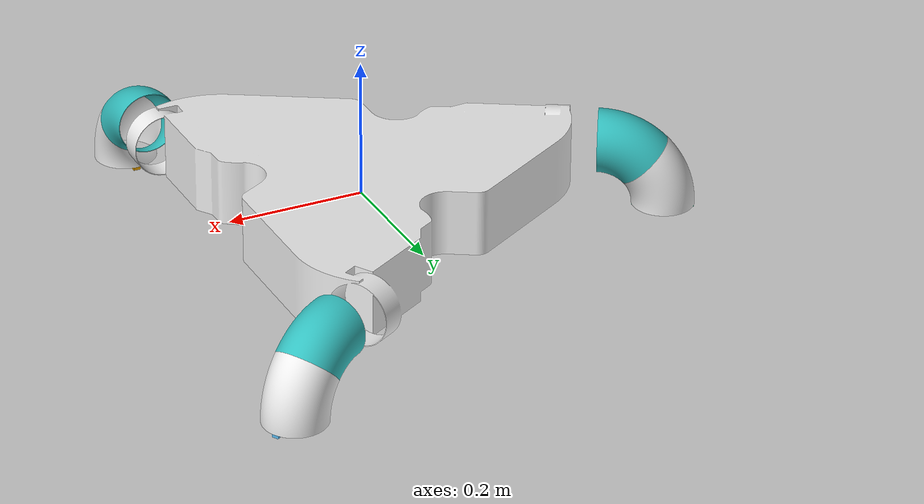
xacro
<?xml version="1.0"?>
<robot xmlns:xacro="http://www.ros.org/wiki/xacro" name="drone">

    <!-- Macros definition -->
    <xacro:macro name="nozzle" params="nozzle_name">
        <link name="${nozzle_name}">
            <visual>
                <geometry>
                    <mesh filename="package://avero_sim/meshes/NozzleV1.stl" scale="0.001 0.001 0.001"/>
                </geometry>
            </visual>
            <collision>
                <geometry>
                    <mesh filename="package://avero_sim/meshes/NozzleV1.stl" scale="0.001 0.001 0.001"/>
                </geometry>
            </collision>
            <inertial>
                <mass value="0.001"/>
                <inertia ixx="0.001" ixy="0" ixz="0" iyy="0.001" iyz="0.0" izz="0.001"/>
            </inertial>
        </link>
    </xacro:macro>

    <xacro:macro name="frame_to_nozzle_joint" params="parent child x y z roll pitch yaw">
        <joint name="${parent}_to_${child}" type="revolute">
            <origin xyz="${x} ${y} ${z}" rpy="${roll} ${pitch} ${yaw}"/>
            <parent link="frame"/>
            <child link="${child}"/>
            <axis xyz="0 1 0"/>
            <limit lower="-50.28" upper="50.28" velocity="50.0" effort="1000.0"/>
        </joint>
    </xacro:macro>

    <xacro:macro name="nozzle_to_nozzle_joint" params="parent child">
        <joint name="${parent}_to_${child}" type="revolute">
            <origin xyz="0.028 0.068 0" rpy="0 0 -0.7854"/>
            <parent link="${parent}"/>
            <child link="${child}"/>
            <axis xyz="0 1 0"/>
            <limit lower="-50.28" upper="50.28" velocity="50.0" effort="1000.0"/>
        </joint>
    </xacro:macro>

    <xacro:macro name="rotor" params="number parent">
        <link name="rotor_${number}">
            <visual>
                <geometry>
                    <box size="0.09 0.01 0.01" />
                </geometry>
            </visual>
            <collision>
                <geometry>
                    <box size="0.01 0.005 0.005" />
                </geometry>
            </collision>
            <inertial>
                <mass value="0.0065"/>
                <inertia ixx="0.045" ixy="0.0" ixz="0.0" iyy="0.02" iyz="0.0" izz="0.003"/>
            </inertial>
        </link>

        <joint name="rotor_${number}_joint" type="continuous">
            <origin xyz="0.028 0.068 0" rpy="1.5708 0 -0.7854"/>
            <parent link="${parent}"/>
            <child link="rotor_${number}"/>
            <axis xyz="0 0 1"/>
        </joint>
    </xacro:macro>

    <!-- frame and base_link Definition -->
    <link name="frame">
        <visual>
            <geometry>
                <mesh filename="package://avero_sim/meshes/FrameV1.stl" scale="0.001 0.001 0.001"/>
            </geometry>
        </visual>
        <collision>
            <geometry>
                <mesh filename="package://avero_sim/meshes/CollisionFrameV1.stl" scale="0.001 0.001 0.001"/>
            </geometry>
        </collision>
         <inertial>
            <mass value="3"/>
            <inertia ixx="0.075" ixy="0" ixz="0" iyy="0.075" iyz="0.0" izz="0.138"/>
        </inertial>
    </link>

    <link name="base_link">

        <mass value="0.001" />

    </link>

    <joint name="base_joint" type="fixed">
        <origin xyz="0.0 0.0 0.0" rpy="0.0 0.0 0.0"/>
        <parent link="base_link"/>
        <child link="frame"/>
    </joint>

    <!-- 6 nozzles -->
    <xacro:nozzle nozzle_name="nozzle_1a" />
    <xacro:nozzle nozzle_name="nozzle_1b" />
    <xacro:nozzle nozzle_name="nozzle_2a" />
    <xacro:nozzle nozzle_name="nozzle_2b" />
    <xacro:nozzle nozzle_name="nozzle_3a" />
    <xacro:nozzle nozzle_name="nozzle_3b" />

    <!-- 6 joints -->
    <xacro:frame_to_nozzle_joint parent="frame" child="nozzle_1a" x="0.187"  y="-0.325" z="0" roll="3.1416" pitch="1.5708" yaw="0"/>
    <xacro:frame_to_nozzle_joint parent="frame" child="nozzle_2a" x="0.187"  y="0.325"  z="0" roll="0.5236" pitch="1.5708" yaw="-0.5236"/>
    <xacro:frame_to_nozzle_joint parent="frame" child="nozzle_3a" x="-0.375" y="0"      z="0" roll="-1.5708" pitch="1.5708" yaw="-0.5236"/>

    <xacro:nozzle_to_nozzle_joint parent="nozzle_1a" child="nozzle_1b"/>
    <xacro:nozzle_to_nozzle_joint parent="nozzle_2a" child="nozzle_2b"/>
    <xacro:nozzle_to_nozzle_joint parent="nozzle_3a" child="nozzle_3b"/>

    <!-- Color -->
    <gazebo reference="frame">
      <material>Gazebo/White</material>
    </gazebo>
    <gazebo reference="nozzle_1a">
      <material>Gazebo/Turquoise</material>
    </gazebo>
    <gazebo reference="nozzle_2a">
      <material>Gazebo/Turquoise</material>
    </gazebo>
    <gazebo reference="nozzle_3a">
      <material>Gazebo/Turquoise</material>
    </gazebo>
    <gazebo reference="nozzle_1b">
      <material>Gazebo/White</material>
    </gazebo>
    <gazebo reference="nozzle_2b">
      <material>Gazebo/White</material>
    </gazebo>
    <gazebo reference="nozzle_3b">
      <material>Gazebo/White</material>
    </gazebo>

    <!-- 3 rotors -->
    <xacro:rotor number="1" parent="nozzle_1b"/>
    <xacro:rotor number="2" parent="nozzle_2b"/>
    <xacro:rotor number="3" parent="nozzle_3b"/>

    <!-- ATTENTION AVERO, ALL THESE PROPERTIES WERE TAKEN FROM STORK -->

    <!-- thrust = +- thrust_constant * rot_velocity²  -->
    <xacro:property name="thrust_constant" value="${6e-05}" />
    <!-- drag_torque = thrust * moment_constant -->
    <xacro:property name="moment_constant" value="0.016" />
    <xacro:property name="time_constant_up" value="0.0125" />
    <!-- [s] TODO: -->
    <xacro:property name="time_constant_down" value="0.025" />
    <!-- [s] TODO: -->
    <xacro:property name="min_rot_velocity" value="100" />
    <xacro:property name="max_rot_velocity" value="2000" />
    <!-- [rad/s] -->  <!-- Velocity to produce 1 kg thrust -->
    <xacro:property name="rotor_drag_coefficient" value="${1.0e-4}" />
    <!-- TODO:-->
    <xacro:property name="rolling_moment_coefficient" value="0.000001" />

    <xacro:property name="tilt_control_mode" value="position" />
    <xacro:property name="p_gain" value="1.0" />
    <xacro:property name="i_gain" value="0.0" />
    <xacro:property name="d_gain" value="0.35" />
    <xacro:property name="servo_zero_offset" value="0.0" />

    <!-- Added from stork_body.xacro -->
    <xacro:property name="rotor_velocity_slowdown_sim" value="100" />

    <!-- Add motors. -->
    <gazebo>
        <plugin name="multimotor_plugin" filename="librotors_gazebo_multimotor_plugin.so">
        <rotors>
            <rotor>
                <jointName>rotor_1_joint</jointName>
                <linkName>rotor_1</linkName>
                <spinDirection>ccw</spinDirection>
                <timeConstantUp>${time_constant_up}</timeConstantUp>
                <timeConstantDown>${time_constant_down}</timeConstantDown>
                <minRotVelocity>${min_rot_velocity}</minRotVelocity>
                <maxRotVelocity>${max_rot_velocity}</maxRotVelocity>
                <thrustConstant>${thrust_constant}</thrustConstant>
                <momentConstant>${moment_constant}</momentConstant>
                <rotorDragCoefficient>${rotor_drag_coefficient}</rotorDragCoefficient>
                <rollingMomentCoefficient>${rolling_moment_coefficient}</rollingMomentCoefficient>
                <rotorVelocitySlowdownSim>${rotor_velocity_slowdown_sim}</rotorVelocitySlowdownSim>
            </rotor>
            <rotor>
                <jointName>rotor_2_joint</jointName>
                <linkName>rotor_2</linkName>
                <spinDirection>ccw</spinDirection>
                <timeConstantUp>${time_constant_up}</timeConstantUp>
                <timeConstantDown>${time_constant_down}</timeConstantDown>
                <minRotVelocity>${min_rot_velocity}</minRotVelocity>
                <maxRotVelocity>${max_rot_velocity}</maxRotVelocity>
                <thrustConstant>${thrust_constant}</thrustConstant>
                <momentConstant>${moment_constant}</momentConstant>
                <rotorDragCoefficient>${rotor_drag_coefficient}</rotorDragCoefficient>
                <rollingMomentCoefficient>${rolling_moment_coefficient}</rollingMomentCoefficient>
                <rotorVelocitySlowdownSim>${rotor_velocity_slowdown_sim}</rotorVelocitySlowdownSim>
            </rotor>
            <rotor>
                <jointName>rotor_3_joint</jointName>
                <linkName>rotor_3</linkName>
                <spinDirection>ccw</spinDirection>
                <timeConstantUp>${time_constant_up}</timeConstantUp>
                <timeConstantDown>${time_constant_down}</timeConstantDown>
                <minRotVelocity>${min_rot_velocity}</minRotVelocity>
                <maxRotVelocity>${max_rot_velocity}</maxRotVelocity>
                <thrustConstant>${thrust_constant}</thrustConstant>
                <momentConstant>${moment_constant}</momentConstant>
                <rotorDragCoefficient>${rotor_drag_coefficient}</rotorDragCoefficient>
                <rollingMomentCoefficient>${rolling_moment_coefficient}</rollingMomentCoefficient>
                <rotorVelocitySlowdownSim>${rotor_velocity_slowdown_sim}</rotorVelocitySlowdownSim>
            </rotor>
        </rotors>
            <servos>
                <servo>
                <jointName>frame_to_nozzle_1a</jointName>
                <spinDirection>ccw</spinDirection>
                <controlMode>${tilt_control_mode}</controlMode>
                <maxRotVelocity>${10}</maxRotVelocity>
                <minRotPosition>${-pi*6}</minRotPosition>
                <maxRotPosition>${pi*6}</maxRotPosition>
                <zeroOffset>${servo_zero_offset}</zeroOffset>
                <joint_control_pid>
                    <p>${p_gain}</p>
                    <i>${i_gain}</i>
                    <d>${d_gain}</d>
                    <iMax>1.0</iMax>
                    <iMin>-1.0</iMin>
                    <cmdMax>2.0</cmdMax>
                    <cmdMin>-2.0</cmdMin>
                </joint_control_pid>
                </servo>
                <servo>
                <jointName>nozzle_1a_to_nozzle_1b</jointName>
                <spinDirection>ccw</spinDirection>
                <controlMode>${tilt_control_mode}</controlMode>
                <maxRotVelocity>${10}</maxRotVelocity>
                <minRotPosition>${-pi*6}</minRotPosition>
                <maxRotPosition>${pi*6}</maxRotPosition>
                <zeroOffset>${servo_zero_offset}</zeroOffset>
                <joint_control_pid>
                    <p>${p_gain}</p>
                    <i>${i_gain}</i>
                    <d>${d_gain}</d>
                    <iMax>1.0</iMax>
                    <iMin>-1.0</iMin>
                    <cmdMax>2.0</cmdMax>
                    <cmdMin>-2.0</cmdMin>
                </joint_control_pid>
                </servo>
                <servo>
                <jointName>frame_to_nozzle_2a</jointName>
                <spinDirection>ccw</spinDirection>
                <controlMode>${tilt_control_mode}</controlMode>
                <maxRotVelocity>${10}</maxRotVelocity>
                <minRotPosition>${-pi*6}</minRotPosition>
                <maxRotPosition>${pi*6}</maxRotPosition>
                <zeroOffset>${servo_zero_offset}</zeroOffset>
                <joint_control_pid>
                    <p>${p_gain}</p>
                    <i>${i_gain}</i>
                    <d>${d_gain}</d>
                    <iMax>1.0</iMax>
                    <iMin>-1.0</iMin>
                    <cmdMax>2.0</cmdMax>
                    <cmdMin>-2.0</cmdMin>
                </joint_control_pid>
                </servo>
                <servo>
                <jointName>nozzle_2a_to_nozzle_2b</jointName>
                <spinDirection>ccw</spinDirection>
                <controlMode>${tilt_control_mode}</controlMode>
                <maxRotVelocity>${10}</maxRotVelocity>
                <minRotPosition>${-pi*6}</minRotPosition>
                <maxRotPosition>${pi*6}</maxRotPosition>
                <zeroOffset>${servo_zero_offset}</zeroOffset>
                <joint_control_pid>
                    <p>${p_gain}</p>
                    <i>${i_gain}</i>
                    <d>${d_gain}</d>
                    <iMax>1.0</iMax>
                    <iMin>-1.0</iMin>
                    <cmdMax>2.0</cmdMax>
                    <cmdMin>-2.0</cmdMin>
                </joint_control_pid>
                </servo>
                <servo>
                <jointName>frame_to_nozzle_3a</jointName>
                <spinDirection>ccw</spinDirection>
                <controlMode>${tilt_control_mode}</controlMode>
                <maxRotVelocity>${10}</maxRotVelocity>
                <minRotPosition>${-pi*6}</minRotPosition>
                <maxRotPosition>${pi*6}</maxRotPosition>
                <zeroOffset>${servo_zero_offset}</zeroOffset>
                <joint_control_pid>
                    <p>${p_gain}</p>
                    <i>${i_gain}</i>
                    <d>${d_gain}</d>
                    <iMax>1.0</iMax>
                    <iMin>-1.0</iMin>
                    <cmdMax>2.0</cmdMax>
                    <cmdMin>-2.0</cmdMin>
                </joint_control_pid>
                </servo>
                <servo>
                <jointName>nozzle_3a_to_nozzle_3b</jointName>
                <spinDirection>ccw</spinDirection>
                <controlMode>${tilt_control_mode}</controlMode>
                <maxRotVelocity>${10}</maxRotVelocity>
                <minRotPosition>${-pi*6}</minRotPosition>
                <maxRotPosition>${pi*6}</maxRotPosition>
                <zeroOffset>${servo_zero_offset}</zeroOffset>
                <joint_control_pid>
                    <p>${p_gain}</p>
                    <i>${i_gain}</i>
                    <d>${d_gain}</d>
                    <iMax>1.0</iMax>
                    <iMin>-1.0</iMin>
                    <cmdMax>2.0</cmdMax>
                    <cmdMin>-2.0</cmdMin>
                </joint_control_pid>
                </servo>
            </servos>
        </plugin>

    </gazebo>

    <gazebo>
        <plugin name="baselink_transfo" filename="libgazebo_ros_p3d.so">
          <frameName>map</frameName>
          <topicName>pose_base_link</topicName>
          <bodyName>base_link</bodyName>
          <updateRate>100.0</updateRate>
        </plugin>
      </gazebo>

</robot>
